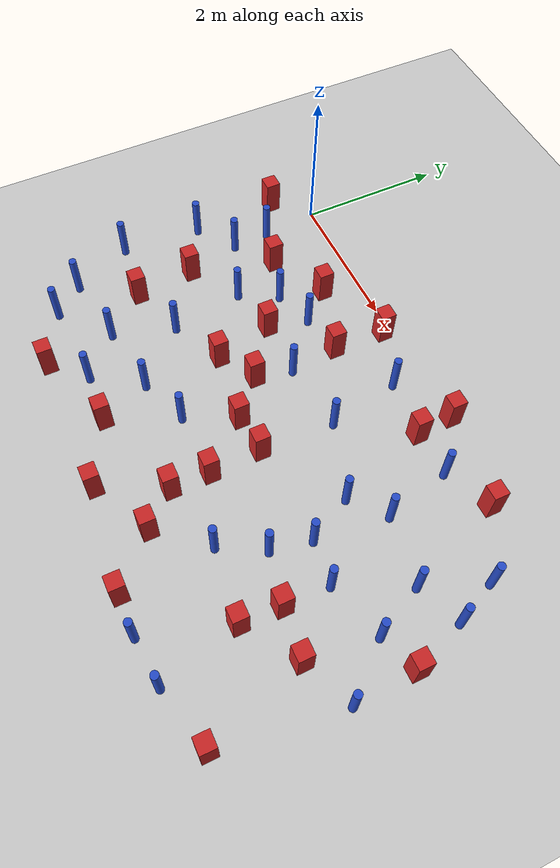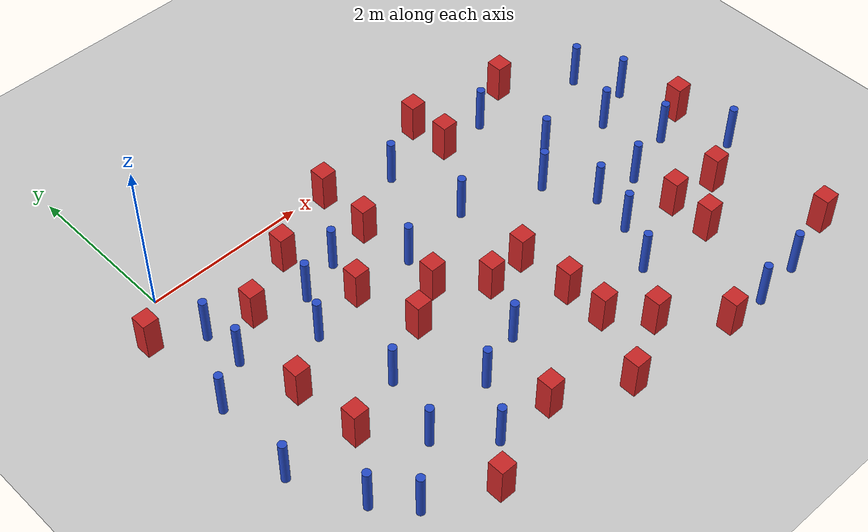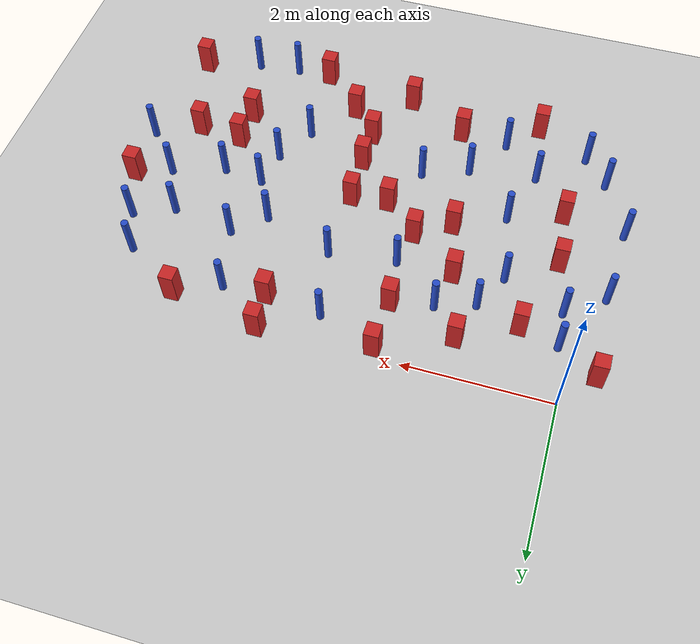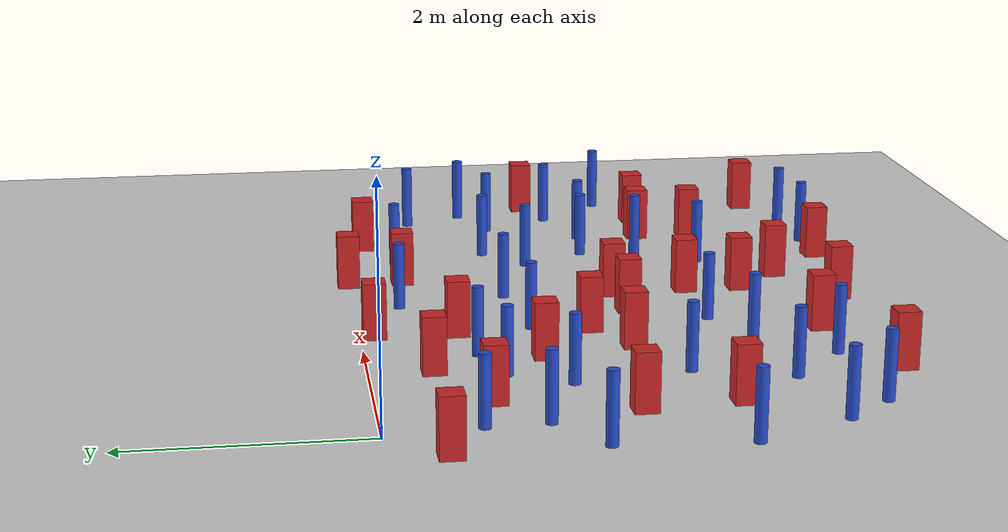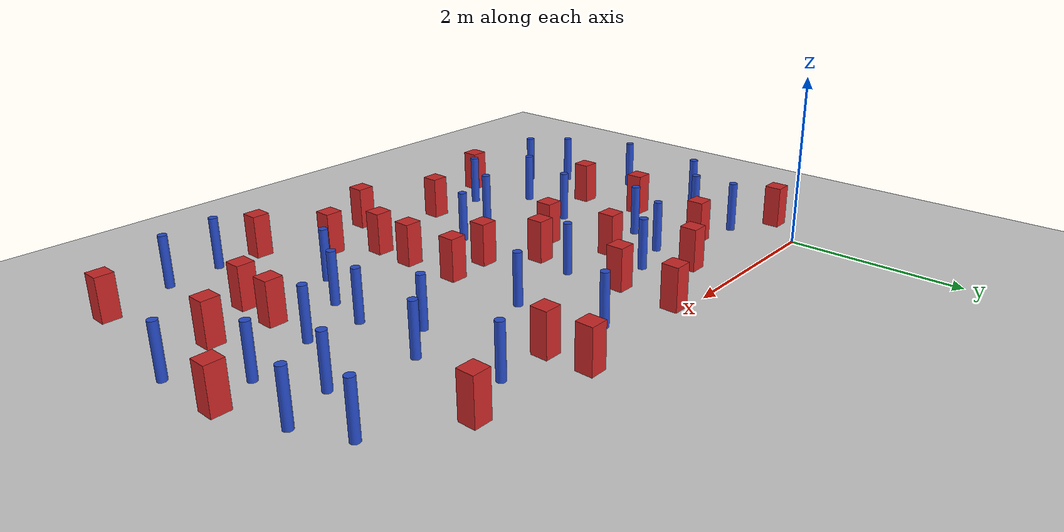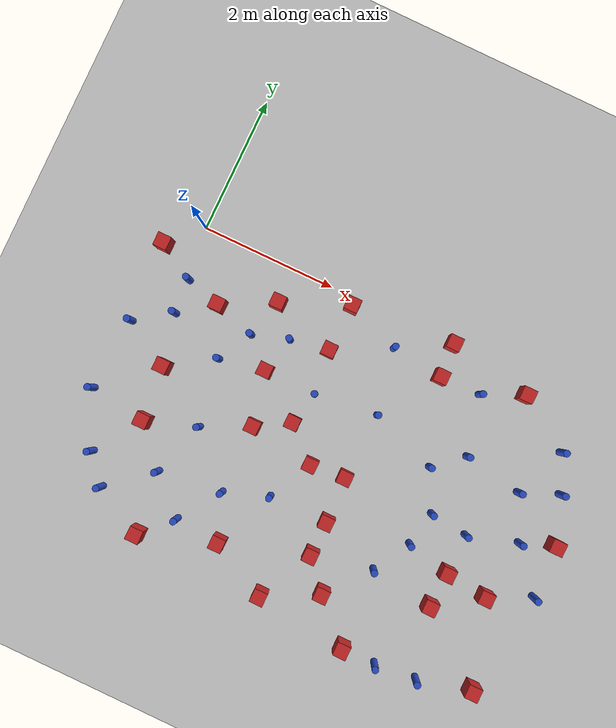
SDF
<sdf version="1.6">
 <world name="default">
  <model name="ground_plane">
   <static>1</static>
   <link name="link">
    <collision name="collision">
     <geometry><plane><normal>0 0 1</normal><size>100 100</size></plane></geometry>
     <surface><friction><ode><mu>100</mu><mu2>50</mu2></ode></friction></surface>
    </collision>
    <visual name="visual">
     <cast_shadows>0</cast_shadows>
     <geometry><plane><normal>0 0 1</normal><size>100 100</size></plane></geometry>
     <material>
      <ambient>1.0 1.0 1.0 1.0</ambient>
      <diffuse>0.8 0.8 0.8 1.0</diffuse>
      <specular>0.01 0.01 0.01 1.000000</specular>
     </material>
    </visual>
   </link>
  </model>
  <model name="NamedLocations">
   <static>true</static>
   <link name="DefaultStart"><pose>8.5 0 0 0 0 3.14</pose></link>
  </model>
  <model name="square_post_obstacle15">
   <static>true</static>
   <pose>3.35773666967 -3.5634429944 1.91545236811e-07 -7.35059704564e-06 1.12565212e-07 2.39332434364e-05</pose>
   <link name="link">
    <pose>0 0 0.25 0 -0 0</pose>
    <inertial>
     <mass>100</mass>
     <inertia>
      <ixx>0.166667</ixx>
      <ixy>0</ixy>
      <ixz>0</ixz>
      <iyy>0.166667</iyy>
      <iyz>0</iyz>
      <izz>0.166667</izz>
     </inertia>
    </inertial>
    <collision name="collision"><geometry><box><size>.2 .2 .5</size></box></geometry></collision>
    <visual name="visual">
     <geometry><box><size>.2 .2 .5</size></box></geometry>
     <material>
      <script><name>Gazebo/Red</name><uri>file://media/materials/scripts/gazebo.material</uri></script>
     </material>
    </visual>
   </link>
  </model>
  <model name="square_post_obstacle18">
   <static>true</static>
   <pose>1.65763689313 -1.4866116556 1.91545236811e-07 -7.35059704564e-06 1.12565212e-07 2.39332434364e-05</pose>
   <link name="link">
    <pose>0 0 0.25 0 -0 0</pose>
    <inertial>
     <mass>100</mass>
     <inertia>
      <ixx>0.166667</ixx>
      <ixy>0</ixy>
      <ixz>0</ixz>
      <iyy>0.166667</iyy>
      <iyz>0</iyz>
      <izz>0.166667</izz>
     </inertia>
    </inertial>
    <collision name="collision"><geometry><box><size>.2 .2 .5</size></box></geometry></collision>
    <visual name="visual">
     <geometry><box><size>.2 .2 .5</size></box></geometry>
     <material>
      <script><name>Gazebo/Red</name><uri>file://media/materials/scripts/gazebo.material</uri></script>
     </material>
    </visual>
   </link>
  </model>
  <model name="pole_obstacle12">
   <static>true</static>
   <pose>-0.456745542418 -2.75892908312 7.38925637345e-09 -8.471706928e-08 1.24976765163e-08 -1.74513093012e-07</pose>
   <link name="link">
    <pose>0 0 0.3 0 -0 0</pose>
    <inertial>
     <mass>1</mass>
     <inertia><ixx>0.145833</ixx><ixy>0</ixy><ixz>0</ixz><iyy>0.145833</iyy><iyz>0</iyz><izz>0.125</izz></inertia>
    </inertial>
    <collision name="collision">
     <geometry><cylinder><radius>0.05</radius><length>.6</length></cylinder></geometry>
    </collision>
    <visual name="visual">
     <geometry><cylinder><radius>0.05</radius><length>.6</length></cylinder></geometry>
     <material>
      <script><name>Gazebo/Blue</name><uri>file://media/materials/scripts/gazebo.material</uri></script>
     </material>
    </visual>
   </link>
  </model>
  <model name="square_post_obstacle23">
   <static>true</static>
   <pose>2.10180651756 -3.97057028613 1.91545236811e-07 -7.35059704564e-06 1.12565212e-07 2.39332434364e-05</pose>
   <link name="link">
    <pose>0 0 0.25 0 -0 0</pose>
    <inertial>
     <mass>100</mass>
     <inertia>
      <ixx>0.166667</ixx>
      <ixy>0</ixy>
      <ixz>0</ixz>
      <iyy>0.166667</iyy>
      <iyz>0</iyz>
      <izz>0.166667</izz>
     </inertia>
    </inertial>
    <collision name="collision"><geometry><box><size>.2 .2 .5</size></box></geometry></collision>
    <visual name="visual">
     <geometry><box><size>.2 .2 .5</size></box></geometry>
     <material>
      <script><name>Gazebo/Red</name><uri>file://media/materials/scripts/gazebo.material</uri></script>
     </material>
    </visual>
   </link>
  </model>
  <model name="pole_obstacle24">
   <static>true</static>
   <pose>2.48712657223 -3.06890353403 7.38925637345e-09 -8.47170692798e-08 1.24976764939e-08 -1.74513093025e-07</pose>
   <link name="link">
    <pose>0 0 0.3 0 -0 0</pose>
    <inertial>
     <mass>1</mass>
     <inertia><ixx>0.145833</ixx><ixy>0</ixy><ixz>0</ixz><iyy>0.145833</iyy><iyz>0</iyz><izz>0.125</izz></inertia>
    </inertial>
    <collision name="collision">
     <geometry><cylinder><radius>0.05</radius><length>.6</length></cylinder></geometry>
    </collision>
    <visual name="visual">
     <geometry><cylinder><radius>0.05</radius><length>.6</length></cylinder></geometry>
     <material>
      <script><name>Gazebo/Blue</name><uri>file://media/materials/scripts/gazebo.material</uri></script>
     </material>
    </visual>
   </link>
  </model>
  <model name="square_post_obstacle34">
   <static>true</static>
   <pose>1.84127307644 -2.2743218542 1.91545236811e-07 -7.35059704564e-06 1.12565212e-07 2.39332434364e-05</pose>
   <link name="link">
    <pose>0 0 0.25 0 -0 0</pose>
    <inertial>
     <mass>100</mass>
     <inertia>
      <ixx>0.166667</ixx>
      <ixy>0</ixy>
      <ixz>0</ixz>
      <iyy>0.166667</iyy>
      <iyz>0</iyz>
      <izz>0.166667</izz>
     </inertia>
    </inertial>
    <collision name="collision"><geometry><box><size>.2 .2 .5</size></box></geometry></collision>
    <visual name="visual">
     <geometry><box><size>.2 .2 .5</size></box></geometry>
     <material>
      <script><name>Gazebo/Red</name><uri>file://media/materials/scripts/gazebo.material</uri></script>
     </material>
    </visual>
   </link>
  </model>
  <model name="pole_obstacle33">
   <static>true</static>
   <pose>5.64556836394 -1.50495139852 7.38925637345e-09 -8.471706928e-08 1.24976765134e-08 -1.74513093015e-07</pose>
   <link name="link">
    <pose>0 0 0.3 0 -0 0</pose>
    <inertial>
     <mass>1</mass>
     <inertia><ixx>0.145833</ixx><ixy>0</ixy><ixz>0</ixz><iyy>0.145833</iyy><iyz>0</iyz><izz>0.125</izz></inertia>
    </inertial>
    <collision name="collision">
     <geometry><cylinder><radius>0.05</radius><length>.6</length></cylinder></geometry>
    </collision>
    <visual name="visual">
     <geometry><cylinder><radius>0.05</radius><length>.6</length></cylinder></geometry>
     <material>
      <script><name>Gazebo/Blue</name><uri>file://media/materials/scripts/gazebo.material</uri></script>
     </material>
    </visual>
   </link>
  </model>
  <model name="square_post_obstacle38">
   <static>true</static>
   <pose>3.359196365 -3.05190707392 1.91545236811e-07 -7.35059704564e-06 1.12565212e-07 2.39332434364e-05</pose>
   <link name="link">
    <pose>0 0 0.25 0 -0 0</pose>
    <inertial>
     <mass>100</mass>
     <inertia>
      <ixx>0.166667</ixx>
      <ixy>0</ixy>
      <ixz>0</ixz>
      <iyy>0.166667</iyy>
      <iyz>0</iyz>
      <izz>0.166667</izz>
     </inertia>
    </inertial>
    <collision name="collision"><geometry><box><size>.2 .2 .5</size></box></geometry></collision>
    <visual name="visual">
     <geometry><box><size>.2 .2 .5</size></box></geometry>
     <material>
      <script><name>Gazebo/Red</name><uri>file://media/materials/scripts/gazebo.material</uri></script>
     </material>
    </visual>
   </link>
  </model>
  <model name="pole_obstacle40">
   <static>true</static>
   <pose>4.56358797856 -2.82879441684 7.38925637345e-09 -8.47170692798e-08 1.24976764937e-08 -1.74513093023e-07</pose>
   <link name="link">
    <pose>0 0 0.3 0 -0 0</pose>
    <inertial>
     <mass>1</mass>
     <inertia><ixx>0.145833</ixx><ixy>0</ixy><ixz>0</ixz><iyy>0.145833</iyy><iyz>0</iyz><izz>0.125</izz></inertia>
    </inertial>
    <collision name="collision">
     <geometry><cylinder><radius>0.05</radius><length>.6</length></cylinder></geometry>
    </collision>
    <visual name="visual">
     <geometry><cylinder><radius>0.05</radius><length>.6</length></cylinder></geometry>
     <material>
      <script><name>Gazebo/Blue</name><uri>file://media/materials/scripts/gazebo.material</uri></script>
     </material>
    </visual>
   </link>
  </model>
  <model name="pole_obstacle42">
   <static>true</static>
   <pose>0.141117784678 -1.2980079029 7.38925637345e-09 -8.47170692799e-08 1.24976765106e-08 -1.74513093015e-07</pose>
   <link name="link">
    <pose>0 0 0.3 0 -0 0</pose>
    <inertial>
     <mass>1</mass>
     <inertia><ixx>0.145833</ixx><ixy>0</ixy><ixz>0</ixz><iyy>0.145833</iyy><iyz>0</iyz><izz>0.125</izz></inertia>
    </inertial>
    <collision name="collision">
     <geometry><cylinder><radius>0.05</radius><length>.6</length></cylinder></geometry>
    </collision>
    <visual name="visual">
     <geometry><cylinder><radius>0.05</radius><length>.6</length></cylinder></geometry>
     <material>
      <script><name>Gazebo/Blue</name><uri>file://media/materials/scripts/gazebo.material</uri></script>
     </material>
    </visual>
   </link>
  </model>
  <model name="pole_obstacle44">
   <static>true</static>
   <pose>0.894342598758 -3.4361015577 7.38925637345e-09 -8.47170692799e-08 1.2497676509e-08 -1.74513093016e-07</pose>
   <link name="link">
    <pose>0 0 0.3 0 -0 0</pose>
    <inertial>
     <mass>1</mass>
     <inertia><ixx>0.145833</ixx><ixy>0</ixy><ixz>0</ixz><iyy>0.145833</iyy><iyz>0</iyz><izz>0.125</izz></inertia>
    </inertial>
    <collision name="collision">
     <geometry><cylinder><radius>0.05</radius><length>.6</length></cylinder></geometry>
    </collision>
    <visual name="visual">
     <geometry><cylinder><radius>0.05</radius><length>.6</length></cylinder></geometry>
     <material>
      <script><name>Gazebo/Blue</name><uri>file://media/materials/scripts/gazebo.material</uri></script>
     </material>
    </visual>
   </link>
  </model>
  <model name="square_post_obstacle42">
   <static>true</static>
   <pose>4.32038955064 -4.56333158553 1.91545236811e-07 -7.35059704564e-06 1.12565212e-07 2.39332434364e-05</pose>
   <link name="link">
    <pose>0 0 0.25 0 -0 0</pose>
    <inertial>
     <mass>100</mass>
     <inertia>
      <ixx>0.166667</ixx>
      <ixy>0</ixy>
      <ixz>0</ixz>
      <iyy>0.166667</iyy>
      <iyz>0</iyz>
      <izz>0.166667</izz>
     </inertia>
    </inertial>
    <collision name="collision"><geometry><box><size>.2 .2 .5</size></box></geometry></collision>
    <visual name="visual">
     <geometry><box><size>.2 .2 .5</size></box></geometry>
     <material>
      <script><name>Gazebo/Red</name><uri>file://media/materials/scripts/gazebo.material</uri></script>
     </material>
    </visual>
   </link>
  </model>
  <model name="pole_obstacle46">
   <static>true</static>
   <pose>1.42588505111 -3.93104109504 7.38925637345e-09 -8.47170692799e-08 1.24976765053e-08 -1.74513093017e-07</pose>
   <link name="link">
    <pose>0 0 0.3 0 -0 0</pose>
    <inertial>
     <mass>1</mass>
     <inertia><ixx>0.145833</ixx><ixy>0</ixy><ixz>0</ixz><iyy>0.145833</iyy><iyz>0</iyz><izz>0.125</izz></inertia>
    </inertial>
    <collision name="collision">
     <geometry><cylinder><radius>0.05</radius><length>.6</length></cylinder></geometry>
    </collision>
    <visual name="visual">
     <geometry><cylinder><radius>0.05</radius><length>.6</length></cylinder></geometry>
     <material>
      <script><name>Gazebo/Blue</name><uri>file://media/materials/scripts/gazebo.material</uri></script>
     </material>
    </visual>
   </link>
  </model>
  <model name="pole_obstacle48">
   <static>true</static>
   <pose>4.55271423714 -0.482002901767 7.38925637345e-09 -8.471706928e-08 1.24976765164e-08 -1.74513093013e-07</pose>
   <link name="link">
    <pose>0 0 0.3 0 -0 0</pose>
    <inertial>
     <mass>1</mass>
     <inertia><ixx>0.145833</ixx><ixy>0</ixy><ixz>0</ixz><iyy>0.145833</iyy><iyz>0</iyz><izz>0.125</izz></inertia>
    </inertial>
    <collision name="collision">
     <geometry><cylinder><radius>0.05</radius><length>.6</length></cylinder></geometry>
    </collision>
    <visual name="visual">
     <geometry><cylinder><radius>0.05</radius><length>.6</length></cylinder></geometry>
     <material>
      <script><name>Gazebo/Blue</name><uri>file://media/materials/scripts/gazebo.material</uri></script>
     </material>
    </visual>
   </link>
  </model>
  <model name="pole_obstacle49">
   <static>true</static>
   <pose>6.19780825888 -1.27641806119 7.38925637345e-09 -8.471706928e-08 1.24976765134e-08 -1.74513093015e-07</pose>
   <link name="link">
    <pose>0 0 0.3 0 -0 0</pose>
    <inertial>
     <mass>1</mass>
     <inertia><ixx>0.145833</ixx><ixy>0</ixy><ixz>0</ixz><iyy>0.145833</iyy><iyz>0</iyz><izz>0.125</izz></inertia>
    </inertial>
    <collision name="collision">
     <geometry><cylinder><radius>0.05</radius><length>.6</length></cylinder></geometry>
    </collision>
    <visual name="visual">
     <geometry><cylinder><radius>0.05</radius><length>.6</length></cylinder></geometry>
     <material>
      <script><name>Gazebo/Blue</name><uri>file://media/materials/scripts/gazebo.material</uri></script>
     </material>
    </visual>
   </link>
  </model>
  <model name="square_post_obstacle49">
   <static>true</static>
   <pose>0.323989825806 -2.05455188927 1.91545236811e-07 -7.35059704564e-06 1.12565212e-07 2.39332434364e-05</pose>
   <link name="link">
    <pose>0 0 0.25 0 -0 0</pose>
    <inertial>
     <mass>100</mass>
     <inertia>
      <ixx>0.166667</ixx>
      <ixy>0</ixy>
      <ixz>0</ixz>
      <iyy>0.166667</iyy>
      <iyz>0</iyz>
      <izz>0.166667</izz>
     </inertia>
    </inertial>
    <collision name="collision"><geometry><box><size>.2 .2 .5</size></box></geometry></collision>
    <visual name="visual">
     <geometry><box><size>.2 .2 .5</size></box></geometry>
     <material>
      <script><name>Gazebo/Red</name><uri>file://media/materials/scripts/gazebo.material</uri></script>
     </material>
    </visual>
   </link>
  </model>
  <model name="pole_obstacle61">
   <static>true</static>
   <pose>4.76984223573 -1.35574805043 7.38925637345e-09 -8.471706928e-08 1.24976765134e-08 -1.74513093015e-07</pose>
   <link name="link">
    <pose>0 0 0.3 0 -0 0</pose>
    <inertial>
     <mass>1</mass>
     <inertia><ixx>0.145833</ixx><ixy>0</ixy><ixz>0</ixz><iyy>0.145833</iyy><iyz>0</iyz><izz>0.125</izz></inertia>
    </inertial>
    <collision name="collision">
     <geometry><cylinder><radius>0.05</radius><length>.6</length></cylinder></geometry>
    </collision>
    <visual name="visual">
     <geometry><cylinder><radius>0.05</radius><length>.6</length></cylinder></geometry>
     <material>
      <script><name>Gazebo/Blue</name><uri>file://media/materials/scripts/gazebo.material</uri></script>
     </material>
    </visual>
   </link>
  </model>
  <model name="pole_obstacle66">
   <static>true</static>
   <pose>-0.0791909231613 -3.57505301912 7.38925637345e-09 -8.471706928e-08 1.24976765098e-08 -1.74513093016e-07</pose>
   <link name="link">
    <pose>0 0 0.3 0 -0 0</pose>
    <inertial>
     <mass>1</mass>
     <inertia><ixx>0.145833</ixx><ixy>0</ixy><ixz>0</ixz><iyy>0.145833</iyy><iyz>0</iyz><izz>0.125</izz></inertia>
    </inertial>
    <collision name="collision">
     <geometry><cylinder><radius>0.05</radius><length>.6</length></cylinder></geometry>
    </collision>
    <visual name="visual">
     <geometry><cylinder><radius>0.05</radius><length>.6</length></cylinder></geometry>
     <material>
      <script><name>Gazebo/Blue</name><uri>file://media/materials/scripts/gazebo.material</uri></script>
     </material>
    </visual>
   </link>
  </model>
  <model name="pole_obstacle78">
   <static>true</static>
   <pose>1.14916138847 -2.61418642393 7.38925637345e-09 -8.47170692799e-08 1.24976765053e-08 -1.74513093017e-07</pose>
   <link name="link">
    <pose>0 0 0.3 0 -0 0</pose>
    <inertial>
     <mass>1</mass>
     <inertia><ixx>0.145833</ixx><ixy>0</ixy><ixz>0</ixz><iyy>0.145833</iyy><iyz>0</iyz><izz>0.125</izz></inertia>
    </inertial>
    <collision name="collision">
     <geometry><cylinder><radius>0.05</radius><length>.6</length></cylinder></geometry>
    </collision>
    <visual name="visual">
     <geometry><cylinder><radius>0.05</radius><length>.6</length></cylinder></geometry>
     <material>
      <script><name>Gazebo/Blue</name><uri>file://media/materials/scripts/gazebo.material</uri></script>
     </material>
    </visual>
   </link>
  </model>
  <model name="pole_obstacle81">
   <static>true</static>
   <pose>1.2489354502 -1.11293071725 7.38925637345e-09 -8.471706928e-08 1.24976765079e-08 -1.74513093017e-07</pose>
   <link name="link">
    <pose>0 0 0.3 0 -0 0</pose>
    <inertial>
     <mass>1</mass>
     <inertia><ixx>0.145833</ixx><ixy>0</ixy><ixz>0</ixz><iyy>0.145833</iyy><iyz>0</iyz><izz>0.125</izz></inertia>
    </inertial>
    <collision name="collision">
     <geometry><cylinder><radius>0.05</radius><length>.6</length></cylinder></geometry>
    </collision>
    <visual name="visual">
     <geometry><cylinder><radius>0.05</radius><length>.6</length></cylinder></geometry>
     <material>
      <script><name>Gazebo/Blue</name><uri>file://media/materials/scripts/gazebo.material</uri></script>
     </material>
    </visual>
   </link>
  </model>
  <model name="pole_obstacle94">
   <static>true</static>
   <pose>0.114316139889 -0.785196991889 7.38925637345e-09 -8.47170692799e-08 1.24976765055e-08 -1.74513093016e-07</pose>
   <link name="link">
    <pose>0 0 0.3 0 -0 0</pose>
    <inertial>
     <mass>1</mass>
     <inertia><ixx>0.145833</ixx><ixy>0</ixy><ixz>0</ixz><iyy>0.145833</iyy><iyz>0</iyz><izz>0.125</izz></inertia>
    </inertial>
    <collision name="collision">
     <geometry><cylinder><radius>0.05</radius><length>.6</length></cylinder></geometry>
    </collision>
    <visual name="visual">
     <geometry><cylinder><radius>0.05</radius><length>.6</length></cylinder></geometry>
     <material>
      <script><name>Gazebo/Blue</name><uri>file://media/materials/scripts/gazebo.material</uri></script>
     </material>
    </visual>
   </link>
  </model>
  <model name="pole_obstacle98">
   <static>true</static>
   <pose>0.259776040732 -3.97874420883 7.38925637345e-09 -8.471706928e-08 1.24976765102e-08 -1.74513093015e-07</pose>
   <link name="link">
    <pose>0 0 0.3 0 -0 0</pose>
    <inertial>
     <mass>1</mass>
     <inertia><ixx>0.145833</ixx><ixy>0</ixy><ixz>0</ixz><iyy>0.145833</iyy><iyz>0</iyz><izz>0.125</izz></inertia>
    </inertial>
    <collision name="collision">
     <geometry><cylinder><radius>0.05</radius><length>.6</length></cylinder></geometry>
    </collision>
    <visual name="visual">
     <geometry><cylinder><radius>0.05</radius><length>.6</length></cylinder></geometry>
     <material>
      <script><name>Gazebo/Blue</name><uri>file://media/materials/scripts/gazebo.material</uri></script>
     </material>
    </visual>
   </link>
  </model>
  <model name="pole_obstacle106">
   <static>true</static>
   <pose>5.22665918525 -2.37521227779 7.38925637345e-09 -8.47170692798e-08 1.24976764937e-08 -1.74513093023e-07</pose>
   <link name="link">
    <pose>0 0 0.3 0 -0 0</pose>
    <inertial>
     <mass>1</mass>
     <inertia><ixx>0.145833</ixx><ixy>0</ixy><ixz>0</ixz><iyy>0.145833</iyy><iyz>0</iyz><izz>0.125</izz></inertia>
    </inertial>
    <collision name="collision">
     <geometry><cylinder><radius>0.05</radius><length>.6</length></cylinder></geometry>
    </collision>
    <visual name="visual">
     <geometry><cylinder><radius>0.05</radius><length>.6</length></cylinder></geometry>
     <material>
      <script><name>Gazebo/Blue</name><uri>file://media/materials/scripts/gazebo.material</uri></script>
     </material>
    </visual>
   </link>
  </model>
  <model name="square_post_obstacle94">
   <static>true</static>
   <pose>3.32585760303 -2.37154337386 1.91545236811e-07 -7.35059704564e-06 1.12565212e-07 2.39332434364e-05</pose>
   <link name="link">
    <pose>0 0 0.25 0 -0 0</pose>
    <inertial>
     <mass>100</mass>
     <inertia>
      <ixx>0.166667</ixx>
      <ixy>0</ixy>
      <ixz>0</ixz>
      <iyy>0.166667</iyy>
      <iyz>0</iyz>
      <izz>0.166667</izz>
     </inertia>
    </inertial>
    <collision name="collision"><geometry><box><size>.2 .2 .5</size></box></geometry></collision>
    <visual name="visual">
     <geometry><box><size>.2 .2 .5</size></box></geometry>
     <material>
      <script><name>Gazebo/Red</name><uri>file://media/materials/scripts/gazebo.material</uri></script>
     </material>
    </visual>
   </link>
  </model>
  <model name="square_post_obstacle97">
   <static>true</static>
   <pose>1.41021430871 -0.534106312206 1.91545236811e-07 -7.35059704564e-06 1.12565212e-07 2.39332434364e-05</pose>
   <link name="link">
    <pose>0 0 0.25 0 -0 0</pose>
    <inertial>
     <mass>100</mass>
     <inertia>
      <ixx>0.166667</ixx>
      <ixy>0</ixy>
      <ixz>0</ixz>
      <iyy>0.166667</iyy>
      <iyz>0</iyz>
      <izz>0.166667</izz>
     </inertia>
    </inertial>
    <collision name="collision"><geometry><box><size>.2 .2 .5</size></box></geometry></collision>
    <visual name="visual">
     <geometry><box><size>.2 .2 .5</size></box></geometry>
     <material>
      <script><name>Gazebo/Red</name><uri>file://media/materials/scripts/gazebo.material</uri></script>
     </material>
    </visual>
   </link>
  </model>
  <model name="square_post_obstacle100">
   <static>true</static>
   <pose>1.00688911899 -4.35280422832 1.91545236811e-07 -7.35059704564e-06 1.12565212e-07 2.39332434364e-05</pose>
   <link name="link">
    <pose>0 0 0.25 0 -0 0</pose>
    <inertial>
     <mass>100</mass>
     <inertia>
      <ixx>0.166667</ixx>
      <ixy>0</ixy>
      <ixz>0</ixz>
      <iyy>0.166667</iyy>
      <iyz>0</iyz>
      <izz>0.166667</izz>
     </inertia>
    </inertial>
    <collision name="collision"><geometry><box><size>.2 .2 .5</size></box></geometry></collision>
    <visual name="visual">
     <geometry><box><size>.2 .2 .5</size></box></geometry>
     <material>
      <script><name>Gazebo/Red</name><uri>file://media/materials/scripts/gazebo.material</uri></script>
     </material>
    </visual>
   </link>
  </model>
  <model name="square_post_obstacle110">
   <static>true</static>
   <pose>3.7344852802 -3.99039715693 1.91545236811e-07 -7.35059704564e-06 1.12565212e-07 2.39332434364e-05</pose>
   <link name="link">
    <pose>0 0 0.25 0 -0 0</pose>
    <inertial>
     <mass>100</mass>
     <inertia>
      <ixx>0.166667</ixx>
      <ixy>0</ixy>
      <ixz>0</ixz>
      <iyy>0.166667</iyy>
      <iyz>0</iyz>
      <izz>0.166667</izz>
     </inertia>
    </inertial>
    <collision name="collision"><geometry><box><size>.2 .2 .5</size></box></geometry></collision>
    <visual name="visual">
     <geometry><box><size>.2 .2 .5</size></box></geometry>
     <material>
      <script><name>Gazebo/Red</name><uri>file://media/materials/scripts/gazebo.material</uri></script>
     </material>
    </visual>
   </link>
  </model>
  <model name="pole_obstacle123">
   <static>true</static>
   <pose>0.981153524484 -1.62172352651 7.38925637345e-09 -8.47170692798e-08 1.24976764951e-08 -1.74513093022e-07</pose>
   <link name="link">
    <pose>0 0 0.3 0 -0 0</pose>
    <inertial>
     <mass>1</mass>
     <inertia><ixx>0.145833</ixx><ixy>0</ixy><ixz>0</ixz><iyy>0.145833</iyy><iyz>0</iyz><izz>0.125</izz></inertia>
    </inertial>
    <collision name="collision">
     <geometry><cylinder><radius>0.05</radius><length>.6</length></cylinder></geometry>
    </collision>
    <visual name="visual">
     <geometry><cylinder><radius>0.05</radius><length>.6</length></cylinder></geometry>
     <material>
      <script><name>Gazebo/Blue</name><uri>file://media/materials/scripts/gazebo.material</uri></script>
     </material>
    </visual>
   </link>
  </model>
  <model name="pole_obstacle124">
   <static>true</static>
   <pose>3.16944439206 -0.406688405249 7.38925637345e-09 -8.471706928e-08 1.24976765172e-08 -1.74513093013e-07</pose>
   <link name="link">
    <pose>0 0 0.3 0 -0 0</pose>
    <inertial>
     <mass>1</mass>
     <inertia><ixx>0.145833</ixx><ixy>0</ixy><ixz>0</ixz><iyy>0.145833</iyy><iyz>0</iyz><izz>0.125</izz></inertia>
    </inertial>
    <collision name="collision">
     <geometry><cylinder><radius>0.05</radius><length>.6</length></cylinder></geometry>
    </collision>
    <visual name="visual">
     <geometry><cylinder><radius>0.05</radius><length>.6</length></cylinder></geometry>
     <material>
      <script><name>Gazebo/Blue</name><uri>file://media/materials/scripts/gazebo.material</uri></script>
     </material>
    </visual>
   </link>
  </model>
  <model name="square_post_obstacle114">
   <static>true</static>
   <pose>3.90554452949 0.00324785903413 1.91545236811e-07 -7.35059704564e-06 1.12565212e-07 2.39332434364e-05</pose>
   <link name="link">
    <pose>0 0 0.25 0 -0 0</pose>
    <inertial>
     <mass>100</mass>
     <inertia>
      <ixx>0.166667</ixx>
      <ixy>0</ixy>
      <ixz>0</ixz>
      <iyy>0.166667</iyy>
      <iyz>0</iyz>
      <izz>0.166667</izz>
     </inertia>
    </inertial>
    <collision name="collision"><geometry><box><size>.2 .2 .5</size></box></geometry></collision>
    <visual name="visual">
     <geometry><box><size>.2 .2 .5</size></box></geometry>
     <material>
      <script><name>Gazebo/Red</name><uri>file://media/materials/scripts/gazebo.material</uri></script>
     </material>
    </visual>
   </link>
  </model>
  <model name="pole_obstacle136">
   <static>true</static>
   <pose>5.95449277952 -0.729241818454 7.38925637345e-09 -8.47170692799e-08 1.24976765038e-08 -1.74513093018e-07</pose>
   <link name="link">
    <pose>0 0 0.3 0 -0 0</pose>
    <inertial>
     <mass>1</mass>
     <inertia><ixx>0.145833</ixx><ixy>0</ixy><ixz>0</ixz><iyy>0.145833</iyy><iyz>0</iyz><izz>0.125</izz></inertia>
    </inertial>
    <collision name="collision">
     <geometry><cylinder><radius>0.05</radius><length>.6</length></cylinder></geometry>
    </collision>
    <visual name="visual">
     <geometry><cylinder><radius>0.05</radius><length>.6</length></cylinder></geometry>
     <material>
      <script><name>Gazebo/Blue</name><uri>file://media/materials/scripts/gazebo.material</uri></script>
     </material>
    </visual>
   </link>
  </model>
  <model name="square_post_obstacle120">
   <static>true</static>
   <pose>5.14271988185 -0.214525013984 1.91545236811e-07 -7.35059704564e-06 1.12565212e-07 2.39332434364e-05</pose>
   <link name="link">
    <pose>0 0 0.25 0 -0 0</pose>
    <inertial>
     <mass>100</mass>
     <inertia>
      <ixx>0.166667</ixx>
      <ixy>0</ixy>
      <ixz>0</ixz>
      <iyy>0.166667</iyy>
      <iyz>0</iyz>
      <izz>0.166667</izz>
     </inertia>
    </inertial>
    <collision name="collision"><geometry><box><size>.2 .2 .5</size></box></geometry></collision>
    <visual name="visual">
     <geometry><box><size>.2 .2 .5</size></box></geometry>
     <material>
      <script><name>Gazebo/Red</name><uri>file://media/materials/scripts/gazebo.material</uri></script>
     </material>
    </visual>
   </link>
  </model>
  <model name="square_post_obstacle122">
   <static>true</static>
   <pose>5.83975261475 -3.04294442551 1.91545236811e-07 -7.35059704564e-06 1.12565212e-07 2.39332434364e-05</pose>
   <link name="link">
    <pose>0 0 0.25 0 -0 0</pose>
    <inertial>
     <mass>100</mass>
     <inertia>
      <ixx>0.166667</ixx>
      <ixy>0</ixy>
      <ixz>0</ixz>
      <iyy>0.166667</iyy>
      <iyz>0</iyz>
      <izz>0.166667</izz>
     </inertia>
    </inertial>
    <collision name="collision"><geometry><box><size>.2 .2 .5</size></box></geometry></collision>
    <visual name="visual">
     <geometry><box><size>.2 .2 .5</size></box></geometry>
     <material>
      <script><name>Gazebo/Red</name><uri>file://media/materials/scripts/gazebo.material</uri></script>
     </material>
    </visual>
   </link>
  </model>
  <model name="square_post_obstacle129">
   <static>true</static>
   <pose>0.649794156685 -0.931034436827 1.91545236811e-07 -7.35059704564e-06 1.12565212e-07 2.39332434364e-05</pose>
   <link name="link">
    <pose>0 0 0.25 0 -0 0</pose>
    <inertial>
     <mass>100</mass>
     <inertia>
      <ixx>0.166667</ixx>
      <ixy>0</ixy>
      <ixz>0</ixz>
      <iyy>0.166667</iyy>
      <iyz>0</iyz>
      <izz>0.166667</izz>
     </inertia>
    </inertial>
    <collision name="collision"><geometry><box><size>.2 .2 .5</size></box></geometry></collision>
    <visual name="visual">
     <geometry><box><size>.2 .2 .5</size></box></geometry>
     <material>
      <script><name>Gazebo/Red</name><uri>file://media/materials/scripts/gazebo.material</uri></script>
     </material>
    </visual>
   </link>
  </model>
  <model name="pole_obstacle147">
   <static>true</static>
   <pose>4.25540435512 -3.3780848108 7.38925637345e-09 -8.47170692798e-08 1.24976764937e-08 -1.74513093023e-07</pose>
   <link name="link">
    <pose>0 0 0.3 0 -0 0</pose>
    <inertial>
     <mass>1</mass>
     <inertia><ixx>0.145833</ixx><ixy>0</ixy><ixz>0</ixz><iyy>0.145833</iyy><iyz>0</iyz><izz>0.125</izz></inertia>
    </inertial>
    <collision name="collision">
     <geometry><cylinder><radius>0.05</radius><length>.6</length></cylinder></geometry>
    </collision>
    <visual name="visual">
     <geometry><cylinder><radius>0.05</radius><length>.6</length></cylinder></geometry>
     <material>
      <script><name>Gazebo/Blue</name><uri>file://media/materials/scripts/gazebo.material</uri></script>
     </material>
    </visual>
   </link>
  </model>
  <model name="square_post_obstacle145">
   <static>true</static>
   <pose>-0.414966672205 -0.472174150095 1.91545236811e-07 -7.35059704564e-06 1.12565212e-07 2.39332434364e-05</pose>
   <link name="link">
    <pose>0 0 0.25 0 -0 0</pose>
    <inertial>
     <mass>100</mass>
     <inertia>
      <ixx>0.166667</ixx>
      <ixy>0</ixy>
      <ixz>0</ixz>
      <iyy>0.166667</iyy>
      <iyz>0</iyz>
      <izz>0.166667</izz>
     </inertia>
    </inertial>
    <collision name="collision"><geometry><box><size>.2 .2 .5</size></box></geometry></collision>
    <visual name="visual">
     <geometry><box><size>.2 .2 .5</size></box></geometry>
     <material>
      <script><name>Gazebo/Red</name><uri>file://media/materials/scripts/gazebo.material</uri></script>
     </material>
    </visual>
   </link>
  </model>
  <model name="square_post_obstacle151">
   <static>true</static>
   <pose>2.37725798793 -0.123380523124 1.91545236811e-07 -7.35059704564e-06 1.12565212e-07 2.39332434364e-05</pose>
   <link name="link">
    <pose>0 0 0.25 0 -0 0</pose>
    <inertial>
     <mass>100</mass>
     <inertia>
      <ixx>0.166667</ixx>
      <ixy>0</ixy>
      <ixz>0</ixz>
      <iyy>0.166667</iyy>
      <iyz>0</iyz>
      <izz>0.166667</izz>
     </inertia>
    </inertial>
    <collision name="collision"><geometry><box><size>.2 .2 .5</size></box></geometry></collision>
    <visual name="visual">
     <geometry><box><size>.2 .2 .5</size></box></geometry>
     <material>
      <script><name>Gazebo/Red</name><uri>file://media/materials/scripts/gazebo.material</uri></script>
     </material>
    </visual>
   </link>
  </model>
  <model name="square_post_obstacle152">
   <static>true</static>
   <pose>2.95173560267 -4.39019164274 1.91545236811e-07 -7.35059704564e-06 1.12565212e-07 2.39332434364e-05</pose>
   <link name="link">
    <pose>0 0 0.25 0 -0 0</pose>
    <inertial>
     <mass>100</mass>
     <inertia>
      <ixx>0.166667</ixx>
      <ixy>0</ixy>
      <ixz>0</ixz>
      <iyy>0.166667</iyy>
      <iyz>0</iyz>
      <izz>0.166667</izz>
     </inertia>
    </inertial>
    <collision name="collision"><geometry><box><size>.2 .2 .5</size></box></geometry></collision>
    <visual name="visual">
     <geometry><box><size>.2 .2 .5</size></box></geometry>
     <material>
      <script><name>Gazebo/Red</name><uri>file://media/materials/scripts/gazebo.material</uri></script>
     </material>
    </visual>
   </link>
  </model>
  <model name="pole_obstacle160">
   <static>true</static>
   <pose>-0.3768066446 -1.66259913812 7.38925637345e-09 -8.47170692798e-08 1.24976765025e-08 -1.74513093018e-07</pose>
   <link name="link">
    <pose>0 0 0.3 0 -0 0</pose>
    <inertial>
     <mass>1</mass>
     <inertia><ixx>0.145833</ixx><ixy>0</ixy><ixz>0</ixz><iyy>0.145833</iyy><iyz>0</iyz><izz>0.125</izz></inertia>
    </inertial>
    <collision name="collision">
     <geometry><cylinder><radius>0.05</radius><length>.6</length></cylinder></geometry>
    </collision>
    <visual name="visual">
     <geometry><cylinder><radius>0.05</radius><length>.6</length></cylinder></geometry>
     <material>
      <script><name>Gazebo/Blue</name><uri>file://media/materials/scripts/gazebo.material</uri></script>
     </material>
    </visual>
   </link>
  </model>
  <model name="square_post_obstacle157">
   <static>true</static>
   <pose>2.80705439362 -2.41673410032 1.91545236811e-07 -7.35059704564e-06 1.12565212e-07 2.39332434364e-05</pose>
   <link name="link">
    <pose>0 0 0.25 0 -0 0</pose>
    <inertial>
     <mass>100</mass>
     <inertia>
      <ixx>0.166667</ixx>
      <ixy>0</ixy>
      <ixz>0</ixz>
      <iyy>0.166667</iyy>
      <iyz>0</iyz>
      <izz>0.166667</izz>
     </inertia>
    </inertial>
    <collision name="collision"><geometry><box><size>.2 .2 .5</size></box></geometry></collision>
    <visual name="visual">
     <geometry><box><size>.2 .2 .5</size></box></geometry>
     <material>
      <script><name>Gazebo/Red</name><uri>file://media/materials/scripts/gazebo.material</uri></script>
     </material>
    </visual>
   </link>
  </model>
  <model name="pole_obstacle165">
   <static>true</static>
   <pose>5.45869453832 -4.52020101471 7.38925637345e-09 -8.47170692796e-08 1.24976764786e-08 -1.74513093032e-07</pose>
   <link name="link">
    <pose>0 0 0.3 0 -0 0</pose>
    <inertial>
     <mass>1</mass>
     <inertia><ixx>0.145833</ixx><ixy>0</ixy><ixz>0</ixz><iyy>0.145833</iyy><iyz>0</iyz><izz>0.125</izz></inertia>
    </inertial>
    <collision name="collision">
     <geometry><cylinder><radius>0.05</radius><length>.6</length></cylinder></geometry>
    </collision>
    <visual name="visual">
     <geometry><cylinder><radius>0.05</radius><length>.6</length></cylinder></geometry>
     <material>
      <script><name>Gazebo/Blue</name><uri>file://media/materials/scripts/gazebo.material</uri></script>
     </material>
    </visual>
   </link>
  </model>
  <model name="pole_obstacle166">
   <static>true</static>
   <pose>2.43221193525 -1.48801606532 7.38925637345e-09 -8.471706928e-08 1.24976765152e-08 -1.74513093012e-07</pose>
   <link name="link">
    <pose>0 0 0.3 0 -0 0</pose>
    <inertial>
     <mass>1</mass>
     <inertia><ixx>0.145833</ixx><ixy>0</ixy><ixz>0</ixz><iyy>0.145833</iyy><iyz>0</iyz><izz>0.125</izz></inertia>
    </inertial>
    <collision name="collision">
     <geometry><cylinder><radius>0.05</radius><length>.6</length></cylinder></geometry>
    </collision>
    <visual name="visual">
     <geometry><cylinder><radius>0.05</radius><length>.6</length></cylinder></geometry>
     <material>
      <script><name>Gazebo/Blue</name><uri>file://media/materials/scripts/gazebo.material</uri></script>
     </material>
    </visual>
   </link>
  </model>
  <model name="square_post_obstacle160">
   <static>true</static>
   <pose>6.23249608809 -4.30686419002 1.91545236811e-07 -7.35059704564e-06 1.12565212e-07 2.39332434364e-05</pose>
   <link name="link">
    <pose>0 0 0.25 0 -0 0</pose>
    <inertial>
     <mass>100</mass>
     <inertia>
      <ixx>0.166667</ixx>
      <ixy>0</ixy>
      <ixz>0</ixz>
      <iyy>0.166667</iyy>
      <iyz>0</iyz>
      <izz>0.166667</izz>
     </inertia>
    </inertial>
    <collision name="collision"><geometry><box><size>.2 .2 .5</size></box></geometry></collision>
    <visual name="visual">
     <geometry><box><size>.2 .2 .5</size></box></geometry>
     <material>
      <script><name>Gazebo/Red</name><uri>file://media/materials/scripts/gazebo.material</uri></script>
     </material>
    </visual>
   </link>
  </model>
  <model name="pole_obstacle168">
   <static>true</static>
   <pose>5.96421447333 -2.14954595198 7.38925637345e-09 -8.47170692798e-08 1.24976764937e-08 -1.74513093023e-07</pose>
   <link name="link">
    <pose>0 0 0.3 0 -0 0</pose>
    <inertial>
     <mass>1</mass>
     <inertia><ixx>0.145833</ixx><ixy>0</ixy><ixz>0</ixz><iyy>0.145833</iyy><iyz>0</iyz><izz>0.125</izz></inertia>
    </inertial>
    <collision name="collision">
     <geometry><cylinder><radius>0.05</radius><length>.6</length></cylinder></geometry>
    </collision>
    <visual name="visual">
     <geometry><cylinder><radius>0.05</radius><length>.6</length></cylinder></geometry>
     <material>
      <script><name>Gazebo/Blue</name><uri>file://media/materials/scripts/gazebo.material</uri></script>
     </material>
    </visual>
   </link>
  </model>
  <model name="pole_obstacle172">
   <static>true</static>
   <pose>3.36455509434 -1.37305719752 7.38925637345e-09 -8.471706928e-08 1.24976765152e-08 -1.74513093012e-07</pose>
   <link name="link">
    <pose>0 0 0.3 0 -0 0</pose>
    <inertial>
     <mass>1</mass>
     <inertia><ixx>0.145833</ixx><ixy>0</ixy><ixz>0</ixz><iyy>0.145833</iyy><iyz>0</iyz><izz>0.125</izz></inertia>
    </inertial>
    <collision name="collision">
     <geometry><cylinder><radius>0.05</radius><length>.6</length></cylinder></geometry>
    </collision>
    <visual name="visual">
     <geometry><cylinder><radius>0.05</radius><length>.6</length></cylinder></geometry>
     <material>
      <script><name>Gazebo/Blue</name><uri>file://media/materials/scripts/gazebo.material</uri></script>
     </material>
    </visual>
   </link>
  </model>
  <model name="pole_obstacle179">
   <static>true</static>
   <pose>1.84224875369 -3.31022091616 7.38925637345e-09 -8.47170692799e-08 1.24976765053e-08 -1.74513093017e-07</pose>
   <link name="link">
    <pose>0 0 0.3 0 -0 0</pose>
    <inertial>
     <mass>1</mass>
     <inertia><ixx>0.145833</ixx><ixy>0</ixy><ixz>0</ixz><iyy>0.145833</iyy><iyz>0</iyz><izz>0.125</izz></inertia>
    </inertial>
    <collision name="collision">
     <geometry><cylinder><radius>0.05</radius><length>.6</length></cylinder></geometry>
    </collision>
    <visual name="visual">
     <geometry><cylinder><radius>0.05</radius><length>.6</length></cylinder></geometry>
     <material>
      <script><name>Gazebo/Blue</name><uri>file://media/materials/scripts/gazebo.material</uri></script>
     </material>
    </visual>
   </link>
  </model>
  <model name="square_post_obstacle171">
   <static>true</static>
   <pose>6.4314841676 -1.96763710491 1.91545236811e-07 -7.35059704564e-06 1.12565212e-07 2.39332434364e-05</pose>
   <link name="link">
    <pose>0 0 0.25 0 -0 0</pose>
    <inertial>
     <mass>100</mass>
     <inertia>
      <ixx>0.166667</ixx>
      <ixy>0</ixy>
      <ixz>0</ixz>
      <iyy>0.166667</iyy>
      <iyz>0</iyz>
      <izz>0.166667</izz>
     </inertia>
    </inertial>
    <collision name="collision"><geometry><box><size>.2 .2 .5</size></box></geometry></collision>
    <visual name="visual">
     <geometry><box><size>.2 .2 .5</size></box></geometry>
     <material>
      <script><name>Gazebo/Red</name><uri>file://media/materials/scripts/gazebo.material</uri></script>
     </material>
    </visual>
   </link>
  </model>
  <model name="square_post_obstacle175">
   <static>true</static>
   <pose>2.32592647962 -1.98455842913 1.91545236811e-07 -7.35059704564e-06 1.12565212e-07 2.39332434364e-05</pose>
   <link name="link">
    <pose>0 0 0.25 0 -0 0</pose>
    <inertial>
     <mass>100</mass>
     <inertia>
      <ixx>0.166667</ixx>
      <ixy>0</ixy>
      <ixz>0</ixz>
      <iyy>0.166667</iyy>
      <iyz>0</iyz>
      <izz>0.166667</izz>
     </inertia>
    </inertial>
    <collision name="collision"><geometry><box><size>.2 .2 .5</size></box></geometry></collision>
    <visual name="visual">
     <geometry><box><size>.2 .2 .5</size></box></geometry>
     <material>
      <script><name>Gazebo/Red</name><uri>file://media/materials/scripts/gazebo.material</uri></script>
     </material>
    </visual>
   </link>
  </model>
  <model name="pole_obstacle190">
   <static>true</static>
   <pose>6.47758790286 -2.75776547888 7.38925637345e-09 -8.47170692798e-08 1.24976764937e-08 -1.74513093023e-07</pose>
   <link name="link">
    <pose>0 0 0.3 0 -0 0</pose>
    <inertial>
     <mass>1</mass>
     <inertia><ixx>0.145833</ixx><ixy>0</ixy><ixz>0</ixz><iyy>0.145833</iyy><iyz>0</iyz><izz>0.125</izz></inertia>
    </inertial>
    <collision name="collision">
     <geometry><cylinder><radius>0.05</radius><length>.6</length></cylinder></geometry>
    </collision>
    <visual name="visual">
     <geometry><cylinder><radius>0.05</radius><length>.6</length></cylinder></geometry>
     <material>
      <script><name>Gazebo/Blue</name><uri>file://media/materials/scripts/gazebo.material</uri></script>
     </material>
    </visual>
   </link>
  </model>
  <model name="square_post_obstacle182">
   <static>true</static>
   <pose>2.35108650893 -0.836601775202 1.91545236811e-07 -7.35059704564e-06 1.12565212e-07 2.39332434364e-05</pose>
   <link name="link">
    <pose>0 0 0.25 0 -0 0</pose>
    <inertial>
     <mass>100</mass>
     <inertia>
      <ixx>0.166667</ixx>
      <ixy>0</ixy>
      <ixz>0</ixz>
      <iyy>0.166667</iyy>
      <iyz>0</iyz>
      <izz>0.166667</izz>
     </inertia>
    </inertial>
    <collision name="collision"><geometry><box><size>.2 .2 .5</size></box></geometry></collision>
    <visual name="visual">
     <geometry><box><size>.2 .2 .5</size></box></geometry>
     <material>
      <script><name>Gazebo/Red</name><uri>file://media/materials/scripts/gazebo.material</uri></script>
     </material>
    </visual>
   </link>
  </model>
  <model name="square_post_obstacle186">
   <static>true</static>
   <pose>5.21138402654 -2.97130476245 1.91545236811e-07 -7.35059704564e-06 1.12565212e-07 2.39332434364e-05</pose>
   <link name="link">
    <pose>0 0 0.25 0 -0 0</pose>
    <inertial>
     <mass>100</mass>
     <inertia>
      <ixx>0.166667</ixx>
      <ixy>0</ixy>
      <ixz>0</ixz>
      <iyy>0.166667</iyy>
      <iyz>0</iyz>
      <izz>0.166667</izz>
     </inertia>
    </inertial>
    <collision name="collision"><geometry><box><size>.2 .2 .5</size></box></geometry></collision>
    <visual name="visual">
     <geometry><box><size>.2 .2 .5</size></box></geometry>
     <material>
      <script><name>Gazebo/Red</name><uri>file://media/materials/scripts/gazebo.material</uri></script>
     </material>
    </visual>
   </link>
  </model>
  <model name="square_post_obstacle200">
   <static>true</static>
   <pose>5.18893962866 -3.49278040841 1.91545236811e-07 -7.35059704564e-06 1.12565212e-07 2.39332434364e-05</pose>
   <link name="link">
    <pose>0 0 0.25 0 -0 0</pose>
    <inertial>
     <mass>100</mass>
     <inertia>
      <ixx>0.166667</ixx>
      <ixy>0</ixy>
      <ixz>0</ixz>
      <iyy>0.166667</iyy>
      <iyz>0</iyz>
      <izz>0.166667</izz>
     </inertia>
    </inertial>
    <collision name="collision"><geometry><box><size>.2 .2 .5</size></box></geometry></collision>
    <visual name="visual">
     <geometry><box><size>.2 .2 .5</size></box></geometry>
     <material>
      <script><name>Gazebo/Red</name><uri>file://media/materials/scripts/gazebo.material</uri></script>
     </material>
    </visual>
   </link>
  </model>
  <model name="square_post_obstacle201">
   <static>true</static>
   <pose>3.94035616189 -0.498326935105 1.91545236811e-07 -7.35059704564e-06 1.12565212e-07 2.39332434364e-05</pose>
   <link name="link">
    <pose>0 0 0.25 0 -0 0</pose>
    <inertial>
     <mass>100</mass>
     <inertia>
      <ixx>0.166667</ixx>
      <ixy>0</ixy>
      <ixz>0</ixz>
      <iyy>0.166667</iyy>
      <iyz>0</iyz>
      <izz>0.166667</izz>
     </inertia>
    </inertial>
    <collision name="collision"><geometry><box><size>.2 .2 .5</size></box></geometry></collision>
    <visual name="visual">
     <geometry><box><size>.2 .2 .5</size></box></geometry>
     <material>
      <script><name>Gazebo/Red</name><uri>file://media/materials/scripts/gazebo.material</uri></script>
     </material>
    </visual>
   </link>
  </model>
  <model name="pole_obstacle226">
   <static>true</static>
   <pose>4.84184350762 -4.57815967217 7.38925637345e-09 -8.47170692796e-08 1.24976764786e-08 -1.74513093032e-07</pose>
   <link name="link">
    <pose>0 0 0.3 0 -0 0</pose>
    <inertial>
     <mass>1</mass>
     <inertia><ixx>0.145833</ixx><ixy>0</ixy><ixz>0</ixz><iyy>0.145833</iyy><iyz>0</iyz><izz>0.125</izz></inertia>
    </inertial>
    <collision name="collision">
     <geometry><cylinder><radius>0.05</radius><length>.6</length></cylinder></geometry>
    </collision>
    <visual name="visual">
     <geometry><cylinder><radius>0.05</radius><length>.6</length></cylinder></geometry>
     <material>
      <script><name>Gazebo/Blue</name><uri>file://media/materials/scripts/gazebo.material</uri></script>
     </material>
    </visual>
   </link>
  </model>
  <model name="pole_obstacle227">
   <static>true</static>
   <pose>1.78132585152 -0.94064972313 7.38925637345e-09 -8.47170692799e-08 1.24976765075e-08 -1.74513093017e-07</pose>
   <link name="link">
    <pose>0 0 0.3 0 -0 0</pose>
    <inertial>
     <mass>1</mass>
     <inertia><ixx>0.145833</ixx><ixy>0</ixy><ixz>0</ixz><iyy>0.145833</iyy><iyz>0</iyz><izz>0.125</izz></inertia>
    </inertial>
    <collision name="collision">
     <geometry><cylinder><radius>0.05</radius><length>.6</length></cylinder></geometry>
    </collision>
    <visual name="visual">
     <geometry><cylinder><radius>0.05</radius><length>.6</length></cylinder></geometry>
     <material>
      <script><name>Gazebo/Blue</name><uri>file://media/materials/scripts/gazebo.material</uri></script>
     </material>
    </visual>
   </link>
  </model>
  <model name="square_post_obstacle218">
   <static>true</static>
   <pose>0.402218964805 -2.86478001192 1.91545236811e-07 -7.35059704564e-06 1.12565212e-07 2.39332434364e-05</pose>
   <link name="link">
    <pose>0 0 0.25 0 -0 0</pose>
    <inertial>
     <mass>100</mass>
     <inertia>
      <ixx>0.166667</ixx>
      <ixy>0</ixy>
      <ixz>0</ixz>
      <iyy>0.166667</iyy>
      <iyz>0</iyz>
      <izz>0.166667</izz>
     </inertia>
    </inertial>
    <collision name="collision"><geometry><box><size>.2 .2 .5</size></box></geometry></collision>
    <visual name="visual">
     <geometry><box><size>.2 .2 .5</size></box></geometry>
     <material>
      <script><name>Gazebo/Red</name><uri>file://media/materials/scripts/gazebo.material</uri></script>
     </material>
    </visual>
   </link>
  </model>
  <model name="pole_obstacle236">
   <static>true</static>
   <pose>4.35144000957 -1.72029997922 7.38925637345e-09 -8.471706928e-08 1.24976765134e-08 -1.74513093015e-07</pose>
   <link name="link">
    <pose>0 0 0.3 0 -0 0</pose>
    <inertial>
     <mass>1</mass>
     <inertia><ixx>0.145833</ixx><ixy>0</ixy><ixz>0</ixz><iyy>0.145833</iyy><iyz>0</iyz><izz>0.125</izz></inertia>
    </inertial>
    <collision name="collision">
     <geometry><cylinder><radius>0.05</radius><length>.6</length></cylinder></geometry>
    </collision>
    <visual name="visual">
     <geometry><cylinder><radius>0.05</radius><length>.6</length></cylinder></geometry>
     <material>
      <script><name>Gazebo/Blue</name><uri>file://media/materials/scripts/gazebo.material</uri></script>
     </material>
    </visual>
   </link>
  </model>
  <model name="pole_obstacle237">
   <static>true</static>
   <pose>4.66286000957 -2.30854997922 7.38925637345e-09 -8.47170692799e-08 1.24976765028e-08 -1.74513093019e-07</pose>
   <link name="link">
    <pose>0 0 0.3 0 -0 0</pose>
    <inertial>
     <mass>1</mass>
     <inertia><ixx>0.145833</ixx><ixy>0</ixy><ixz>0</ixz><iyy>0.145833</iyy><iyz>0</iyz><izz>0.125</izz></inertia>
    </inertial>
    <collision name="collision">
     <geometry><cylinder><radius>0.05</radius><length>.6</length></cylinder></geometry>
    </collision>
    <visual name="visual">
     <geometry><cylinder><radius>0.05</radius><length>.6</length></cylinder></geometry>
     <material>
      <script><name>Gazebo/Blue</name><uri>file://media/materials/scripts/gazebo.material</uri></script>
     </material>
    </visual>
   </link>
  </model>
 </world>
</sdf>
